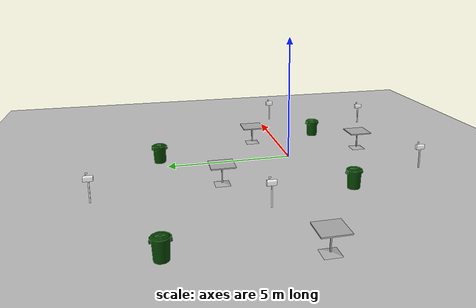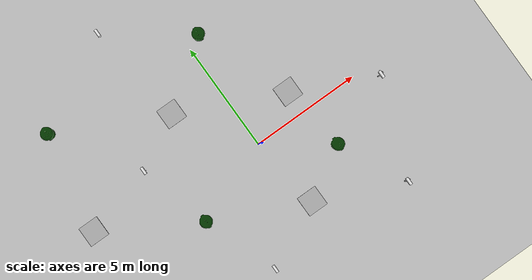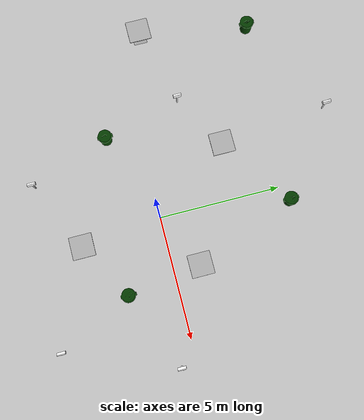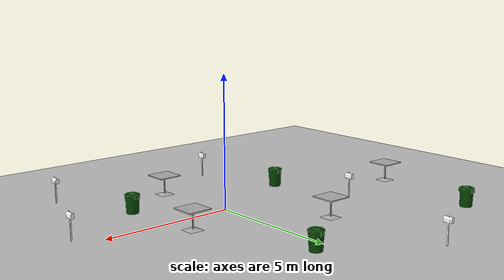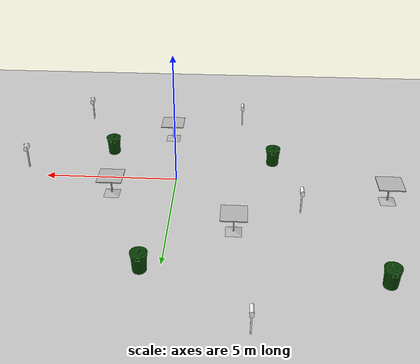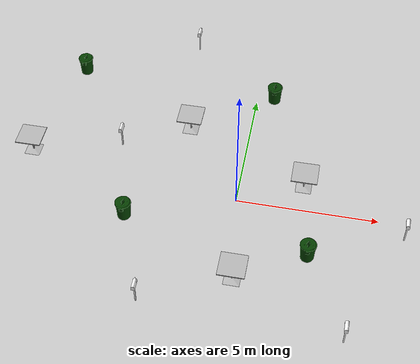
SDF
<sdf version="1.7">
 <world name="default">
  <light name="sun" type="directional">
   <pose>0 0 10 0 -0 0</pose>
   <diffuse>0.8 0.8 0.8 1</diffuse>
   <specular>0.2 0.2 0.2 1</specular>
   <attenuation>
    <range>1000</range>
    <constant>0.9</constant>
    <linear>0.01</linear>
    <quadratic>0.001</quadratic>
   </attenuation>
   <direction>-0.5 0.1 -0.9</direction>
   <spot><inner_angle>0</inner_angle><outer_angle>0</outer_angle><falloff>0</falloff></spot>
  </light>
  <model name="ground_plane">
   <static>1</static>
   <link name="link">
    <collision name="collision">
     <geometry><plane><normal>0 0 1</normal><size>100 100</size></plane></geometry>
     <surface><friction><ode><mu>100</mu><mu2>50</mu2></ode></friction></surface>
    </collision>
    <visual name="visual">
     <cast_shadows>0</cast_shadows>
     <geometry><plane><normal>0 0 1</normal><size>100 100</size></plane></geometry>
     <material>
      <script><uri>file://media/materials/scripts/gazebo.material</uri><name>Gazebo/Grey</name></script>
     </material>
    </visual>
   </link>
  </model>
  <gravity>0 0 -9.8</gravity>
  <magnetic_field>6e-06 2.3e-05 -4.2e-05</magnetic_field>
  <atmosphere type="adiabatic"/>
  <physics type="ode">
   <max_step_size>0.001</max_step_size>
   <real_time_factor>1</real_time_factor>
   <real_time_update_rate>1000</real_time_update_rate>
  </physics>
  <scene><ambient>0.4 0.4 0.4 1</ambient><background>0.7 0.7 0.7 1</background><shadows>1</shadows></scene>
  <audio><device>default</device></audio>
  <spherical_coordinates>
   <surface_model>EARTH_WGS84</surface_model>
   <latitude_deg>0</latitude_deg>
   <longitude_deg>0</longitude_deg>
   <elevation>0</elevation>
   <heading_deg>0</heading_deg>
  </spherical_coordinates>
  <light name="sun" type="directional">
   <pose>3.49777 -3.33996 10 0 -0 0</pose>
   <diffuse>0.8 0.8 0.8 1</diffuse>
   <specular>0.2 0.2 0.2 1</specular>
   <attenuation>
    <range>1000</range>
    <constant>0.9</constant>
    <linear>0.01</linear>
    <quadratic>0.001</quadratic>
   </attenuation>
   <direction>-0.5 0.1 -0.9</direction>
  </light>
  <model name="cafe_table">
   <static>1</static>
   <link name="link">
    <collision name="surface">
     <pose>0 0 0.755 0 -0 0</pose>
     <geometry><box><size>0.913 0.913 0.04</size></box></geometry>
    </collision>
    <collision name="column">
     <pose>0 0 0.37 0 -0 0</pose>
     <geometry><box><size>0.042 0.042 0.74</size></box></geometry>
    </collision>
    <collision name="base">
     <pose>0 0 0.02 0 -0 0</pose>
     <geometry><box><size>0.56 0.56 0.04</size></box></geometry>
    </collision>
    <visual name="visual">
     <geometry><mesh><uri>model://cafe_table/meshes/cafe_table.dae</uri></mesh></geometry>
    </visual>
   </link>
   <pose>2.27614 1.09177 0 0 -0 0</pose>
  </model>
  <model name="first_2015_trash_can">
   <link name="link">
    <inertial>
     <pose>0 0 0.3683 0 -0 0</pose>
     <mass>4.83076</mass>
     <inertia>
      <ixx>0.281534</ixx>
      <ixy>0</ixy>
      <ixz>0</ixz>
      <iyy>0.281534</iyy>
      <iyz>0</iyz>
      <izz>0.126223</izz>
     </inertia>
    </inertial>
    <visual name="visual">
     <geometry><mesh><uri>model://first_2015_trash_can/meshes/trash_can.dae</uri></mesh></geometry>
    </visual>
    <collision name="collision">
     <geometry><mesh><uri>model://first_2015_trash_can/meshes/trash_can.dae</uri></mesh></geometry>
    </collision>
   </link>
   <pose>2.73213 -1.93757 0 2.3e-05 3e-06 -0.00118</pose>
  </model>
  <model name="cafe_table_0">
   <static>1</static>
   <link name="link">
    <collision name="surface">
     <pose>0 0 0.755 0 -0 0</pose>
     <geometry><box><size>0.913 0.913 0.04</size></box></geometry>
    </collision>
    <collision name="column">
     <pose>0 0 0.37 0 -0 0</pose>
     <geometry><box><size>0.042 0.042 0.74</size></box></geometry>
    </collision>
    <collision name="base">
     <pose>0 0 0.02 0 -0 0</pose>
     <geometry><box><size>0.56 0.56 0.04</size></box></geometry>
    </collision>
    <visual name="visual">
     <geometry><mesh><uri>model://cafe_table/meshes/cafe_table.dae</uri></mesh></geometry>
    </visual>
   </link>
   <pose>0.425013 -3.24998 0 0 -0 0</pose>
  </model>
  <model name="first_2015_trash_can_0">
   <link name="link">
    <inertial>
     <pose>0 0 0.3683 0 -0 0</pose>
     <mass>4.83076</mass>
     <inertia>
      <ixx>0.281534</ixx>
      <ixy>0</ixy>
      <ixz>0</ixz>
      <iyy>0.281534</iyy>
      <iyz>0</iyz>
      <izz>0.126223</izz>
     </inertia>
    </inertial>
    <visual name="visual">
     <geometry><mesh><uri>model://first_2015_trash_can/meshes/trash_can.dae</uri></mesh></geometry>
    </visual>
    <collision name="collision">
     <geometry><mesh><uri>model://first_2015_trash_can/meshes/trash_can.dae</uri></mesh></geometry>
    </collision>
   </link>
   <pose>-3.70575 -1.35709 -4e-06 -6e-06 4e-06 -0.00078</pose>
  </model>
  <model name="Mailbox">
   <link name="link">
    <collision name="collision">
     <geometry><mesh><uri>model://mailbox/meshes/mailbox.dae</uri></mesh></geometry>
    </collision>
    <visual name="visual">
     <geometry><mesh><uri>model://mailbox/meshes/mailbox.dae</uri></mesh></geometry>
     <material>
      <script>
       <uri>model://mailbox/materials/scripts</uri>
       <uri>model://mailbox/materials/textures</uri>
       <name>Mailbox/Diffuse</name>
      </script>
     </material>
    </visual>
    <inertial>
     <inertia><ixx>1</ixx><ixy>0</ixy><ixz>0</ixz><iyy>1</iyy><iyz>0</iyz><izz>1</izz></inertia>
     <mass>1</mass>
    </inertial>
   </link>
   <pose>-4.59026 1.9033 -0 -6e-06 -4e-06 0</pose>
  </model>
  <model name="cafe_table_1">
   <static>1</static>
   <link name="link">
    <collision name="surface">
     <pose>0 0 0.755 0 -0 0</pose>
     <geometry><box><size>0.913 0.913 0.04</size></box></geometry>
    </collision>
    <collision name="column">
     <pose>0 0 0.37 0 -0 0</pose>
     <geometry><box><size>0.042 0.042 0.74</size></box></geometry>
    </collision>
    <collision name="base">
     <pose>0 0 0.02 0 -0 0</pose>
     <geometry><box><size>0.56 0.56 0.04</size></box></geometry>
    </collision>
    <visual name="visual">
     <geometry><mesh><uri>model://cafe_table/meshes/cafe_table.dae</uri></mesh></geometry>
    </visual>
   </link>
   <pose>-2.24839 3.17728 0 0 -0 0</pose>
  </model>
  <model name="first_2015_trash_can_1">
   <link name="link">
    <inertial>
     <pose>0 0 0.3683 0 -0 0</pose>
     <mass>4.83076</mass>
     <inertia>
      <ixx>0.281534</ixx>
      <ixy>0</ixy>
      <ixz>0</ixz>
      <iyy>0.281534</iyy>
      <iyz>0</iyz>
      <izz>0.126223</izz>
     </inertia>
    </inertial>
    <visual name="visual">
     <geometry><mesh><uri>model://first_2015_trash_can/meshes/trash_can.dae</uri></mesh></geometry>
    </visual>
    <collision name="collision">
     <geometry><mesh><uri>model://first_2015_trash_can/meshes/trash_can.dae</uri></mesh></geometry>
    </collision>
   </link>
   <pose>0.641549 5.28797 -3e-06 -6e-06 -8e-06 -0.000602</pose>
  </model>
  <model name="first_2015_trash_can_2">
   <link name="link">
    <inertial>
     <pose>0 0 0.3683 0 -0 0</pose>
     <mass>4.83076</mass>
     <inertia>
      <ixx>0.281534</ixx>
      <ixy>0</ixy>
      <ixz>0</ixz>
      <iyy>0.281534</iyy>
      <iyz>0</iyz>
      <izz>0.126223</izz>
     </inertia>
    </inertial>
    <visual name="visual">
     <geometry><mesh><uri>model://first_2015_trash_can/meshes/trash_can.dae</uri></mesh></geometry>
    </visual>
    <collision name="collision">
     <geometry><mesh><uri>model://first_2015_trash_can/meshes/trash_can.dae</uri></mesh></geometry>
    </collision>
   </link>
   <pose>-7.01543 5.56506 -2e-06 5e-06 1e-05 -0.000459</pose>
  </model>
  <model name="Mailbox_0">
   <link name="link">
    <collision name="collision">
     <geometry><mesh><uri>model://mailbox/meshes/mailbox.dae</uri></mesh></geometry>
    </collision>
    <visual name="visual">
     <geometry><mesh><uri>model://mailbox/meshes/mailbox.dae</uri></mesh></geometry>
     <material>
      <script>
       <uri>model://mailbox/materials/scripts</uri>
       <uri>model://mailbox/materials/textures</uri>
       <name>Mailbox/Diffuse</name>
      </script>
     </material>
    </visual>
    <inertial>
     <inertia><ixx>1</ixx><ixy>0</ixy><ixz>0</ixz><iyy>1</iyy><iyz>0</iyz><izz>1</izz></inertia>
     <mass>1</mass>
    </inertial>
   </link>
   <pose>-2.48597 -4.64267 0 8e-06 -8e-06 -0</pose>
  </model>
  <model name="cafe_table_2">
   <static>1</static>
   <link name="link">
    <collision name="surface">
     <pose>0 0 0.755 0 -0 0</pose>
     <geometry><box><size>0.913 0.913 0.04</size></box></geometry>
    </collision>
    <collision name="column">
     <pose>0 0 0.37 0 -0 0</pose>
     <geometry><box><size>0.042 0.042 0.74</size></box></geometry>
    </collision>
    <collision name="base">
     <pose>0 0 0.02 0 -0 0</pose>
     <geometry><box><size>0.56 0.56 0.04</size></box></geometry>
    </collision>
    <visual name="visual">
     <geometry><mesh><uri>model://cafe_table/meshes/cafe_table.dae</uri></mesh></geometry>
    </visual>
   </link>
   <pose>-7.778 1.05656 0 0 -0 0</pose>
  </model>
  <model name="Mailbox_1">
   <link name="link">
    <collision name="collision">
     <geometry><mesh><uri>model://mailbox/meshes/mailbox.dae</uri></mesh></geometry>
    </collision>
    <visual name="visual">
     <geometry><mesh><uri>model://mailbox/meshes/mailbox.dae</uri></mesh></geometry>
     <material>
      <script>
       <uri>model://mailbox/materials/scripts</uri>
       <uri>model://mailbox/materials/textures</uri>
       <name>Mailbox/Diffuse</name>
      </script>
     </material>
    </visual>
    <inertial>
     <inertia><ixx>1</ixx><ixy>0</ixy><ixz>0</ixz><iyy>1</iyy><iyz>0</iyz><izz>1</izz></inertia>
     <mass>1</mass>
    </inertial>
   </link>
   <pose>5.89119 -0.615322 0 -4e-06 -1e-06 0</pose>
  </model>
  <model name="Mailbox_2">
   <link name="link">
    <collision name="collision">
     <geometry><mesh><uri>model://mailbox/meshes/mailbox.dae</uri></mesh></geometry>
    </collision>
    <visual name="visual">
     <geometry><mesh><uri>model://mailbox/meshes/mailbox.dae</uri></mesh></geometry>
     <material>
      <script>
       <uri>model://mailbox/materials/scripts</uri>
       <uri>model://mailbox/materials/textures</uri>
       <name>Mailbox/Diffuse</name>
      </script>
     </material>
    </visual>
    <inertial>
     <inertia><ixx>1</ixx><ixy>0</ixy><ixz>0</ixz><iyy>1</iyy><iyz>0</iyz><izz>1</izz></inertia>
     <mass>1</mass>
    </inertial>
   </link>
   <pose>-2.8026 7.73576 0 -3e-06 1e-06 0</pose>
  </model>
  <model name="Mailbox_3">
   <link name="link">
    <collision name="collision">
     <geometry><mesh><uri>model://mailbox/meshes/mailbox.dae</uri></mesh></geometry>
    </collision>
    <visual name="visual">
     <geometry><mesh><uri>model://mailbox/meshes/mailbox.dae</uri></mesh></geometry>
     <material>
      <script>
       <uri>model://mailbox/materials/scripts</uri>
       <uri>model://mailbox/materials/textures</uri>
       <name>Mailbox/Diffuse</name>
      </script>
     </material>
    </visual>
    <inertial>
     <inertia><ixx>1</ixx><ixy>0</ixy><ixz>0</ixz><iyy>1</iyy><iyz>0</iyz><izz>1</izz></inertia>
     <mass>1</mass>
    </inertial>
   </link>
   <pose>4.20113 -4.92355 0 -5e-06 -1e-06 0</pose>
  </model>
 </world>
</sdf>
